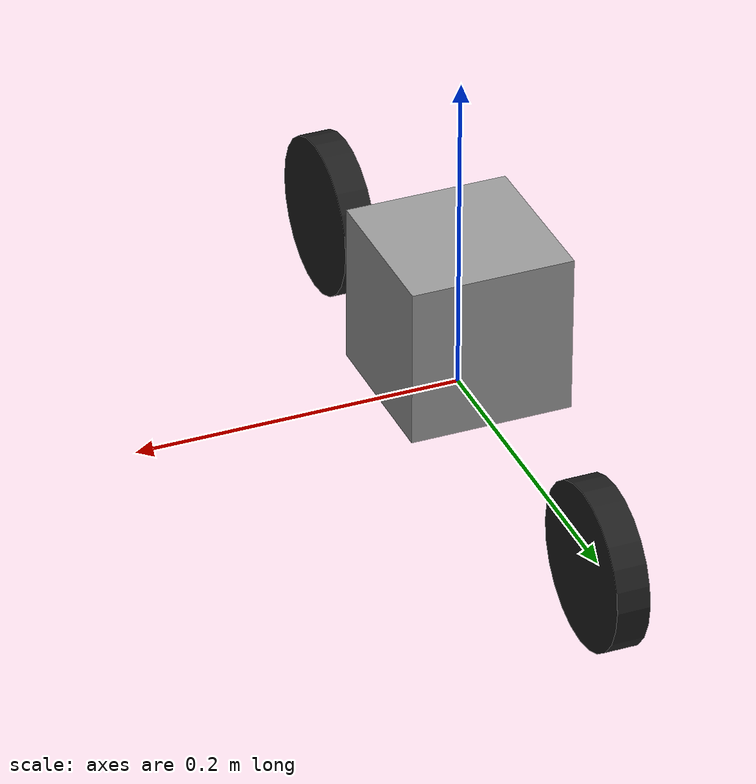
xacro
<?xml version="1.0"?>
<robot name="simple_balance_bot" xmlns:xacro="http://www.ros.org/wiki/xacro">

  <!-- Base Link -->
  <link name="base_link">
    <visual>
      <geometry>
        <box size="0.1 0.1 0.1"/>
      </geometry>
      <origin xyz="0 0 0.05" rpy="0 0 0"/>
      <material name="gray"/>
    </visual>
  </link>

  <!-- Left Wheel -->
  <link name="left_wheel">
    <visual>
      <geometry>
        <cylinder radius="0.05" length="0.02"/>
      </geometry>
      <origin xyz="0 0.1 0" rpy="0 1.5708 0"/>
      <material name="black"/>
    </visual>
  </link>

  <!-- Right Wheel -->
  <link name="right_wheel">
    <visual>
      <geometry>
        <cylinder radius="0.05" length="0.02"/>
      </geometry>
      <origin xyz="0 -0.1 0" rpy="0 1.5708 0"/>
      <material name="black"/>
    </visual>
  </link>

  <!-- Joints -->
  <joint name="left_wheel_joint" type="continuous">
    <parent link="base_link"/>
    <child link="left_wheel"/>
    <origin xyz="0 0.1 0" rpy="0 0 0"/>
    <axis xyz="0 1 0"/>
  </joint>

  <joint name="right_wheel_joint" type="continuous">
    <parent link="base_link"/>
    <child link="right_wheel"/>
    <origin xyz="0 -0.1 0" rpy="0 0 0"/>
    <axis xyz="0 1 0"/>
  </joint>

</robot>
